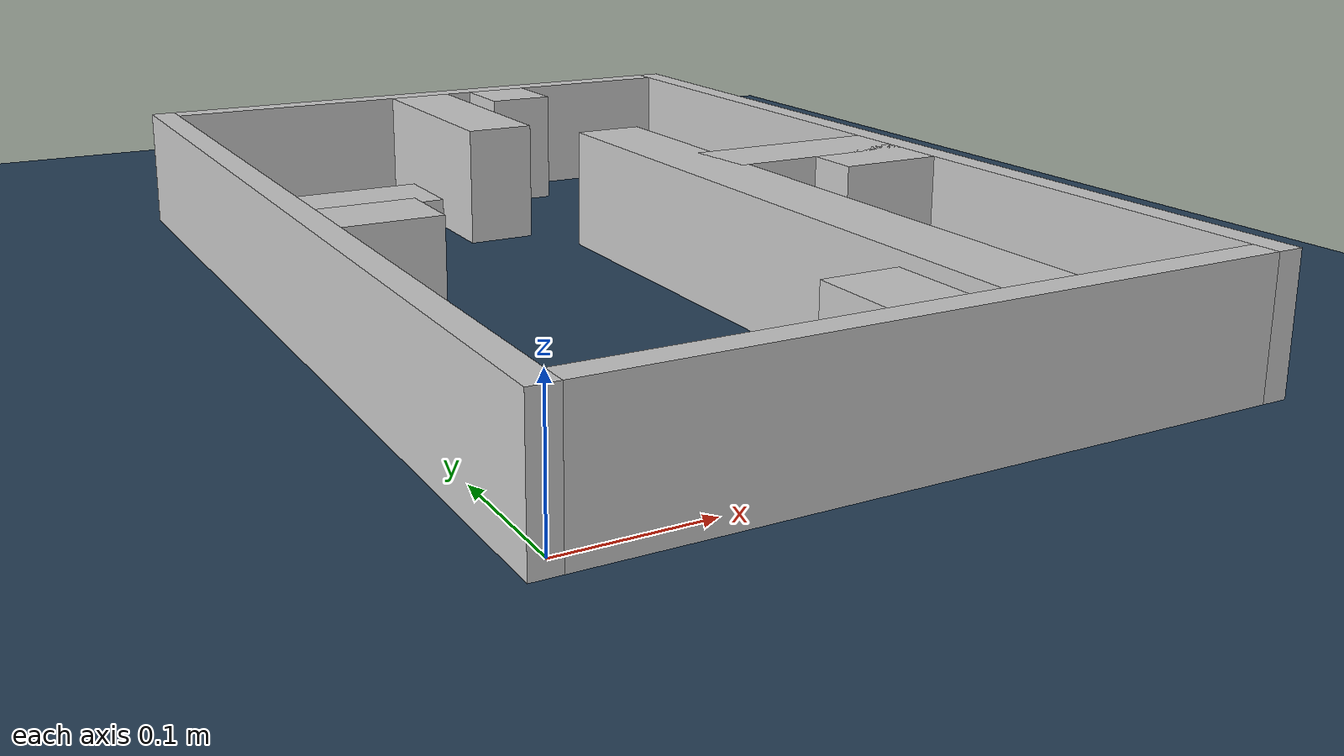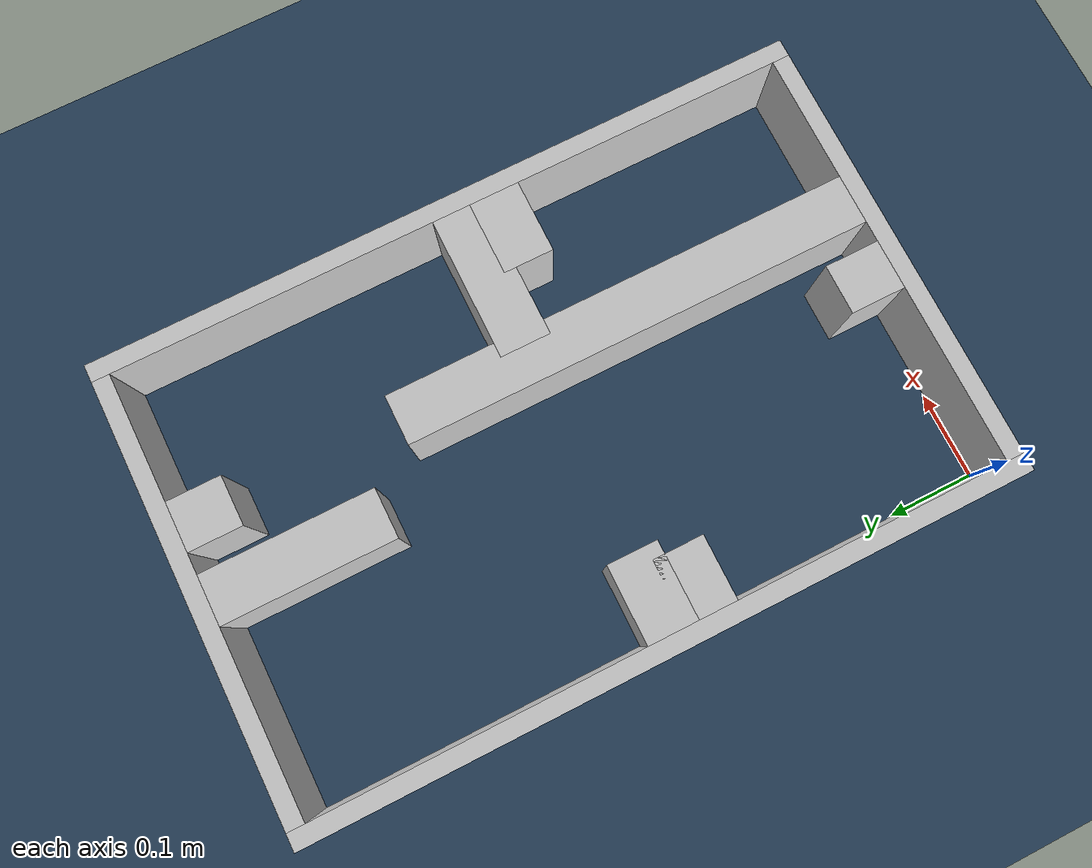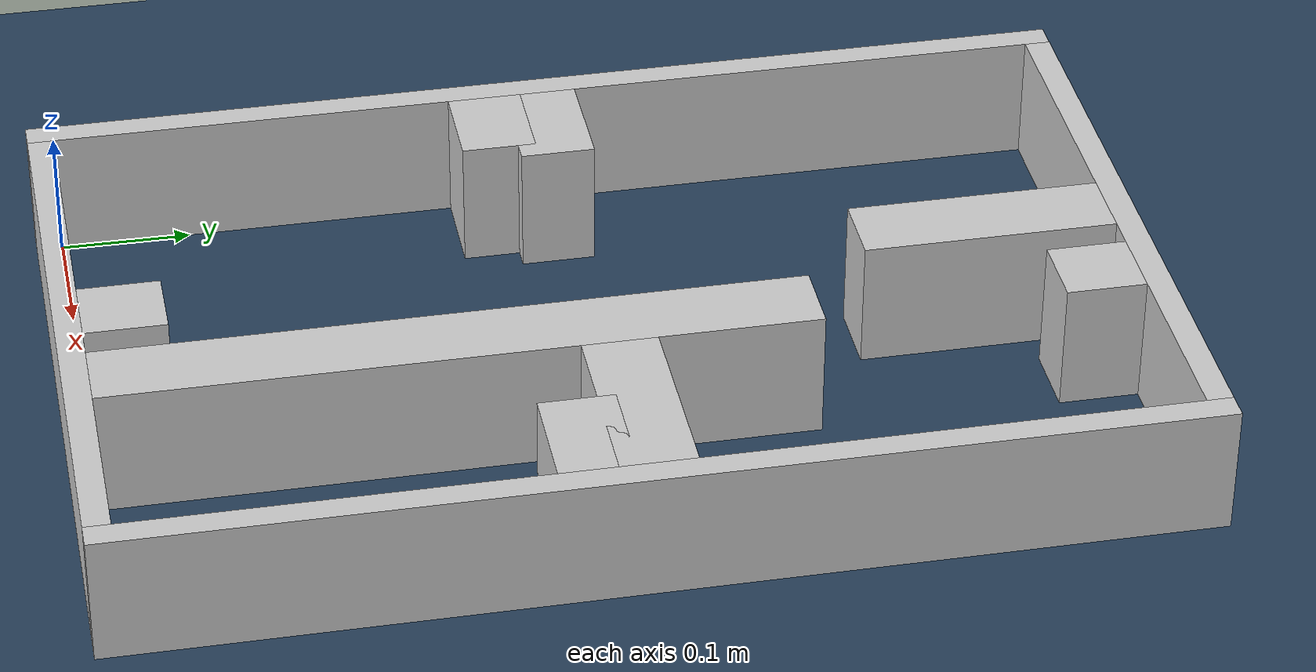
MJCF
<?xml version="1.0" ?>
<mujoco model="generated_real_template">
  <compiler angle="degree"/>
  <option timestep="0.002" integrator="implicitfast" iterations="100" cone="elliptic"/>
  <default>
    <geom density="1"/>
  </default>
  <asset>
    <texture builtin="gradient" height="3072" rgb1="0.3 0.5 0.7" rgb2="0 0 0" type="skybox" width="512"/>
    <texture builtin="checker" height="300" mark="edge" markrgb="0.8 0.8 0.8" name="groundplane" rgb1="0.2 0.3 0.4" rgb2="0.1 0.2 0.3" type="2d" width="300"/>
    <material name="groundplane" reflectance="0.2" texrepeat="5 5" texture="groundplane" texuniform="true"/>
  </asset>
  <worldbody>
    <light dir="0 0 -1" directional="true" pos="0 0 1.5"/>
    <geom name="floor" type="plane" condim="4" friction="0.5 0.005 0.001" material="groundplane" size="0 0 0.05"/>
    <body name="walls">
      <geom name="wall_boundary_left" type="box" condim="4" friction="1.0 0.005 0.0001" rgba="0.8 0.8 0.8 1" pos="-0.010000 0.387500 0.050000" euler="0 0 0.000000" size="0.010000 0.407500 0.050000"/>
      <geom name="wall_boundary_right" type="box" condim="4" friction="1.0 0.005 0.0001" rgba="0.8 0.8 0.8 1" pos="0.500000 0.387500 0.050000" euler="0 0 0.000000" size="0.010000 0.407500 0.050000"/>
      <geom name="wall_boundary_bottom" type="box" condim="4" friction="1.0 0.005 0.0001" rgba="0.8 0.8 0.8 1" pos="0.245000 -0.010000 0.050000" euler="0 0 0.000000" size="0.245000 0.010000 0.050000"/>
      <geom name="wall_boundary_top" type="box" condim="4" friction="1.0 0.005 0.0001" rgba="0.8 0.8 0.8 1" pos="0.245000 0.785000 0.050000" euler="0 0 0.000000" size="0.245000 0.010000 0.050000"/>
      <geom name="wall_inner_1_1" type="box" condim="4" friction="1.0 0.005 0.0001" rgba="0.8 0.8 0.8 1" pos="0.233450 0.031169 0.050000" euler="0 0 90.000000" size="0.031169 0.028500 0.050000"/>
      <geom name="wall_inner_1_2" type="box" condim="4" friction="1.0 0.005 0.0001" rgba="0.8 0.8 0.8 1" pos="0.233450 0.678103 0.050000" euler="0 0 90.000000" size="0.096897 0.028500 0.050000"/>
      <geom name="wall_inner_2_1" type="box" condim="4" friction="1.0 0.005 0.0001" rgba="0.8 0.8 0.8 1" pos="0.314335 0.266373 0.050000" euler="0 0 90.000000" size="0.266373 0.028500 0.050000"/>
      <geom name="wall_inner_2_2" type="box" condim="4" friction="1.0 0.005 0.0001" rgba="0.8 0.8 0.8 1" pos="0.314335 0.744601 0.050000" euler="0 0 90.000000" size="0.030399 0.028500 0.050000"/>
      <geom name="wall_inner_3_1" type="box" condim="4" friction="1.0 0.005 0.0001" rgba="0.8 0.8 0.8 1" pos="0.036312 0.336941 0.050000" euler="0 0 0.000000" size="0.036312 0.028500 0.050000"/>
      <geom name="wall_inner_3_2" type="box" condim="4" friction="1.0 0.005 0.0001" rgba="0.8 0.8 0.8 1" pos="0.448080 0.336941 0.050000" euler="0 0 0.000000" size="0.041920 0.028500 0.050000"/>
      <geom name="wall_inner_4_1" type="box" condim="4" friction="1.0 0.005 0.0001" rgba="0.8 0.8 0.8 1" pos="0.044232 0.380248 0.050000" euler="0 0 0.000000" size="0.044232 0.028500 0.050000"/>
      <geom name="wall_inner_4_2" type="box" condim="4" friction="1.0 0.005 0.0001" rgba="0.8 0.8 0.8 1" pos="0.408093 0.380248 0.050000" euler="0 0 0.000000" size="0.081907 0.028500 0.050000"/>
    </body>
  </worldbody>
</mujoco>
